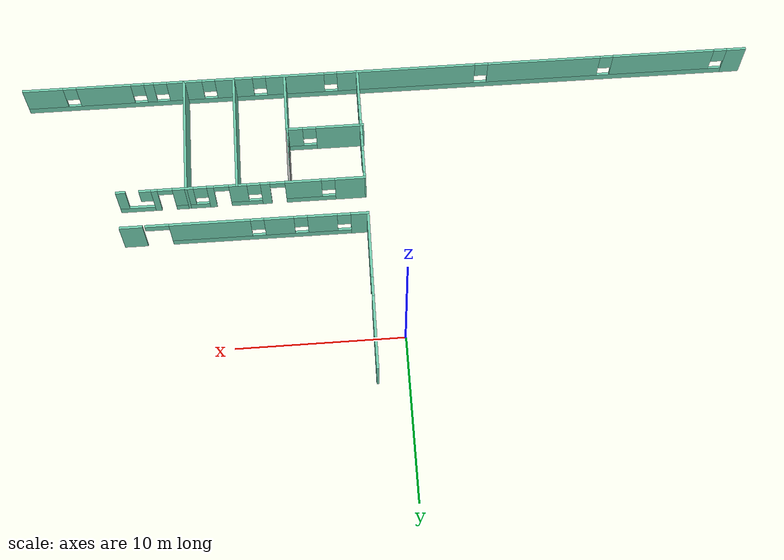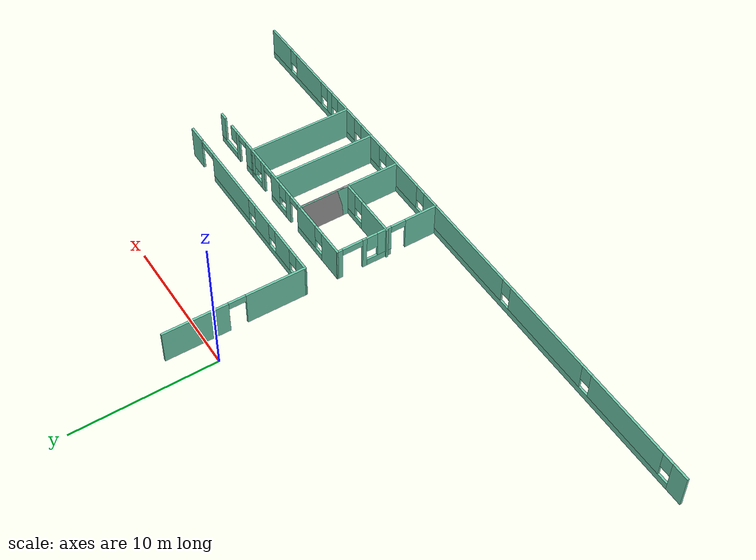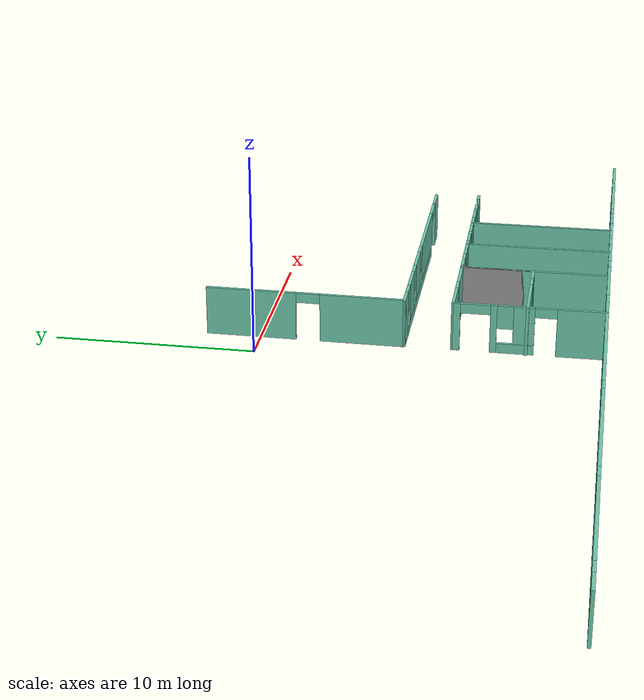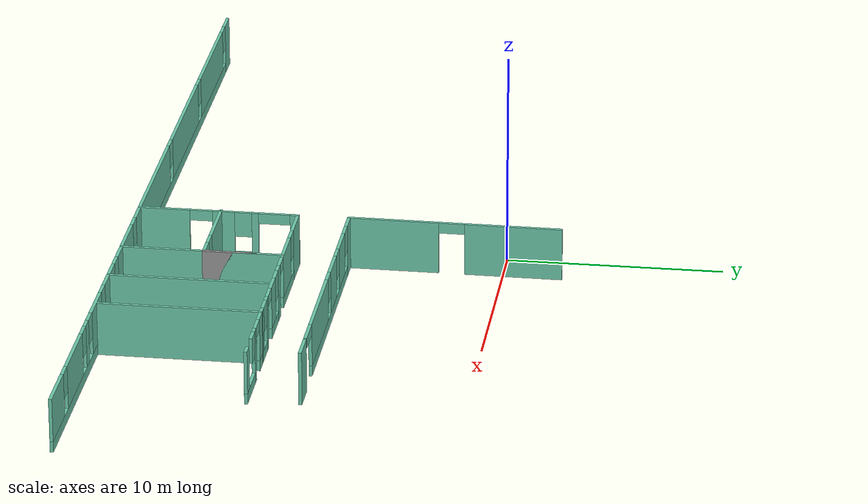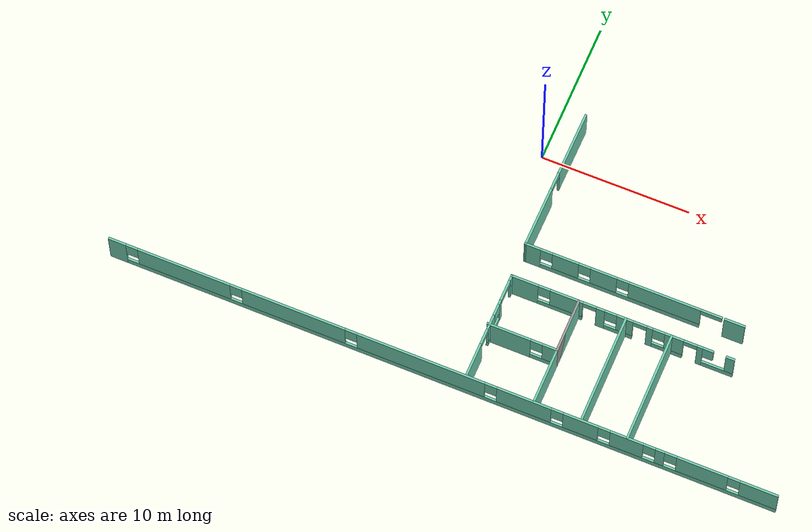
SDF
<sdf version="1.6">
 <model name="Hospital_empty">
  <pose>-0.033999 0.051012 0 0 -0 0</pose>
  <link name="Wall_1">
   <pose>0.002999 -16.937 0 0 -0 0</pose>
   <visual name="Wall_1_Visual_0">
    <pose>-21.7746 0 1.25 0 -0 0</pose>
    <geometry><box><size>1.20077 0.15 2.5</size></box></geometry>
    <material>
     <script><uri>file://media/materials/scripts/gazebo.material</uri><name>Gazebo/Grey</name></script>
     <ambient>0.435294 0.796078 0.67451 1</ambient>
    </material>
   </visual>
   <collision name="Wall_1_Collision_0">
    <geometry><box><size>1.20077 0.15 2.5</size></box></geometry>
    <pose>-21.7746 0 1.25 0 -0 0</pose>
   </collision>
   <visual name="Wall_1_Visual_1">
    <pose>0.600387 0 0.25 0 -0 0</pose>
    <geometry><box><size>43.5492 0.15 0.5</size></box></geometry>
    <material>
     <script><uri>file://media/materials/scripts/gazebo.material</uri><name>Gazebo/Grey</name></script>
     <ambient>0.435294 0.796078 0.67451 1</ambient>
    </material>
   </visual>
   <collision name="Wall_1_Collision_1">
    <geometry><box><size>43.5492 0.15 0.5</size></box></geometry>
    <pose>0.600387 0 0.25 0 -0 0</pose>
   </collision>
   <visual name="Wall_1_Visual_2">
    <pose>-17.2192 0 1.5 0 -0 0</pose>
    <geometry><box><size>6.31 0.15 2</size></box></geometry>
    <material>
     <script><uri>file://media/materials/scripts/gazebo.material</uri><name>Gazebo/Grey</name></script>
     <ambient>0.435294 0.796078 0.67451 1</ambient>
    </material>
   </visual>
   <collision name="Wall_1_Collision_2">
    <geometry><box><size>6.31 0.15 2</size></box></geometry>
    <pose>-17.2192 0 1.5 0 -0 0</pose>
   </collision>
   <visual name="Wall_1_Visual_3">
    <pose>-9.77173 0 1.5 0 -0 0</pose>
    <geometry><box><size>6.985 0.15 2</size></box></geometry>
    <material>
     <script><uri>file://media/materials/scripts/gazebo.material</uri><name>Gazebo/Grey</name></script>
     <ambient>0.435294 0.796078 0.67451 1</ambient>
    </material>
   </visual>
   <collision name="Wall_1_Collision_3">
    <geometry><box><size>6.985 0.15 2</size></box></geometry>
    <pose>-9.77173 0 1.5 0 -0 0</pose>
   </collision>
   <visual name="Wall_1_Visual_4">
    <pose>-1.19923 0 1.5 0 -0 0</pose>
    <geometry><box><size>8.56 0.15 2</size></box></geometry>
    <material>
     <script><uri>file://media/materials/scripts/gazebo.material</uri><name>Gazebo/Grey</name></script>
     <ambient>0.435294 0.796078 0.67451 1</ambient>
    </material>
   </visual>
   <collision name="Wall_1_Collision_4">
    <geometry><box><size>8.56 0.15 2</size></box></geometry>
    <pose>-1.19923 0 1.5 0 -0 0</pose>
   </collision>
   <visual name="Wall_1_Visual_5">
    <pose>5.68577 0 1.5 0 -0 0</pose>
    <geometry><box><size>3.61 0.15 2</size></box></geometry>
    <material>
     <script><uri>file://media/materials/scripts/gazebo.material</uri><name>Gazebo/Grey</name></script>
     <ambient>0.435294 0.796078 0.67451 1</ambient>
    </material>
   </visual>
   <collision name="Wall_1_Collision_5">
    <geometry><box><size>3.61 0.15 2</size></box></geometry>
    <pose>5.68577 0 1.5 0 -0 0</pose>
   </collision>
   <visual name="Wall_1_Visual_6">
    <pose>9.44327 0 1.5 0 -0 0</pose>
    <geometry><box><size>2.305 0.15 2</size></box></geometry>
    <material>
     <script><uri>file://media/materials/scripts/gazebo.material</uri><name>Gazebo/Grey</name></script>
     <ambient>0.435294 0.796078 0.67451 1</ambient>
    </material>
   </visual>
   <collision name="Wall_1_Collision_6">
    <geometry><box><size>2.305 0.15 2</size></box></geometry>
    <pose>9.44327 0 1.5 0 -0 0</pose>
   </collision>
   <visual name="Wall_1_Visual_7">
    <pose>12.4808 0 1.5 0 -0 0</pose>
    <geometry><box><size>2.17 0.15 2</size></box></geometry>
    <material>
     <script><uri>file://media/materials/scripts/gazebo.material</uri><name>Gazebo/Grey</name></script>
     <ambient>0.435294 0.796078 0.67451 1</ambient>
    </material>
   </visual>
   <collision name="Wall_1_Collision_7">
    <geometry><box><size>2.17 0.15 2</size></box></geometry>
    <pose>12.4808 0 1.5 0 -0 0</pose>
   </collision>
   <visual name="Wall_1_Visual_8">
    <pose>14.6633 0 1.5 0 -0 0</pose>
    <geometry><box><size>0.595 0.15 2</size></box></geometry>
    <material>
     <script><uri>file://media/materials/scripts/gazebo.material</uri><name>Gazebo/Grey</name></script>
     <ambient>0.435294 0.796078 0.67451 1</ambient>
    </material>
   </visual>
   <collision name="Wall_1_Collision_8">
    <geometry><box><size>0.595 0.15 2</size></box></geometry>
    <pose>14.6633 0 1.5 0 -0 0</pose>
   </collision>
   <visual name="Wall_1_Visual_9">
    <pose>17.4308 0 1.5 0 -0 0</pose>
    <geometry><box><size>3.34 0.15 2</size></box></geometry>
    <material>
     <script><uri>file://media/materials/scripts/gazebo.material</uri><name>Gazebo/Grey</name></script>
     <ambient>0.435294 0.796078 0.67451 1</ambient>
    </material>
   </visual>
   <collision name="Wall_1_Collision_9">
    <geometry><box><size>3.34 0.15 2</size></box></geometry>
    <pose>17.4308 0 1.5 0 -0 0</pose>
   </collision>
   <visual name="Wall_1_Visual_10">
    <pose>21.1379 0 1.5 0 -0 0</pose>
    <geometry><box><size>2.47423 0.15 2</size></box></geometry>
    <material>
     <script><uri>file://media/materials/scripts/gazebo.material</uri><name>Gazebo/Grey</name></script>
     <ambient>0.435294 0.796078 0.67451 1</ambient>
    </material>
   </visual>
   <collision name="Wall_1_Collision_10">
    <geometry><box><size>2.47423 0.15 2</size></box></geometry>
    <pose>21.1379 0 1.5 0 -0 0</pose>
   </collision>
   <visual name="Wall_1_Visual_11">
    <pose>-20.7742 0 1.9 0 -0 0</pose>
    <geometry><box><size>0.8 0.15 1.2</size></box></geometry>
    <material>
     <script><uri>file://media/materials/scripts/gazebo.material</uri><name>Gazebo/Grey</name></script>
     <ambient>0.435294 0.796078 0.67451 1</ambient>
    </material>
   </visual>
   <collision name="Wall_1_Collision_11">
    <geometry><box><size>0.8 0.15 1.2</size></box></geometry>
    <pose>-20.7742 0 1.9 0 -0 0</pose>
   </collision>
   <visual name="Wall_1_Visual_12">
    <pose>-13.6642 0 1.9 0 -0 0</pose>
    <geometry><box><size>0.8 0.15 1.2</size></box></geometry>
    <material>
     <script><uri>file://media/materials/scripts/gazebo.material</uri><name>Gazebo/Grey</name></script>
     <ambient>0.435294 0.796078 0.67451 1</ambient>
    </material>
   </visual>
   <collision name="Wall_1_Collision_12">
    <geometry><box><size>0.8 0.15 1.2</size></box></geometry>
    <pose>-13.6642 0 1.9 0 -0 0</pose>
   </collision>
   <visual name="Wall_1_Visual_13">
    <pose>-5.87923 0 1.9 0 -0 0</pose>
    <geometry><box><size>0.8 0.15 1.2</size></box></geometry>
    <material>
     <script><uri>file://media/materials/scripts/gazebo.material</uri><name>Gazebo/Grey</name></script>
     <ambient>0.435294 0.796078 0.67451 1</ambient>
    </material>
   </visual>
   <collision name="Wall_1_Collision_13">
    <geometry><box><size>0.8 0.15 1.2</size></box></geometry>
    <pose>-5.87923 0 1.9 0 -0 0</pose>
   </collision>
   <visual name="Wall_1_Visual_14">
    <pose>3.48077 0 1.9 0 -0 0</pose>
    <geometry><box><size>0.8 0.15 1.2</size></box></geometry>
    <material>
     <script><uri>file://media/materials/scripts/gazebo.material</uri><name>Gazebo/Grey</name></script>
     <ambient>0.435294 0.796078 0.67451 1</ambient>
    </material>
   </visual>
   <collision name="Wall_1_Collision_14">
    <geometry><box><size>0.8 0.15 1.2</size></box></geometry>
    <pose>3.48077 0 1.9 0 -0 0</pose>
   </collision>
   <visual name="Wall_1_Visual_15">
    <pose>7.89077 0 1.9 0 -0 0</pose>
    <geometry><box><size>0.8 0.15 1.2</size></box></geometry>
    <material>
     <script><uri>file://media/materials/scripts/gazebo.material</uri><name>Gazebo/Grey</name></script>
     <ambient>0.435294 0.796078 0.67451 1</ambient>
    </material>
   </visual>
   <collision name="Wall_1_Collision_15">
    <geometry><box><size>0.8 0.15 1.2</size></box></geometry>
    <pose>7.89077 0 1.9 0 -0 0</pose>
   </collision>
   <visual name="Wall_1_Visual_16">
    <pose>10.9958 0 1.9 0 -0 0</pose>
    <geometry><box><size>0.8 0.15 1.2</size></box></geometry>
    <material>
     <script><uri>file://media/materials/scripts/gazebo.material</uri><name>Gazebo/Grey</name></script>
     <ambient>0.435294 0.796078 0.67451 1</ambient>
    </material>
   </visual>
   <collision name="Wall_1_Collision_16">
    <geometry><box><size>0.8 0.15 1.2</size></box></geometry>
    <pose>10.9958 0 1.9 0 -0 0</pose>
   </collision>
   <visual name="Wall_1_Visual_17">
    <pose>13.9658 0 1.9 0 -0 0</pose>
    <geometry><box><size>0.8 0.15 1.2</size></box></geometry>
    <material>
     <script><uri>file://media/materials/scripts/gazebo.material</uri><name>Gazebo/Grey</name></script>
     <ambient>0.435294 0.796078 0.67451 1</ambient>
    </material>
   </visual>
   <collision name="Wall_1_Collision_17">
    <geometry><box><size>0.8 0.15 1.2</size></box></geometry>
    <pose>13.9658 0 1.9 0 -0 0</pose>
   </collision>
   <visual name="Wall_1_Visual_18">
    <pose>15.3608 0 1.9 0 -0 0</pose>
    <geometry><box><size>0.8 0.15 1.2</size></box></geometry>
    <material>
     <script><uri>file://media/materials/scripts/gazebo.material</uri><name>Gazebo/Grey</name></script>
     <ambient>0.435294 0.796078 0.67451 1</ambient>
    </material>
   </visual>
   <collision name="Wall_1_Collision_18">
    <geometry><box><size>0.8 0.15 1.2</size></box></geometry>
    <pose>15.3608 0 1.9 0 -0 0</pose>
   </collision>
   <visual name="Wall_1_Visual_19">
    <pose>19.5008 0 1.9 0 -0 0</pose>
    <geometry><box><size>0.8 0.15 1.2</size></box></geometry>
    <material>
     <script><uri>file://media/materials/scripts/gazebo.material</uri><name>Gazebo/Grey</name></script>
     <ambient>0.435294 0.796078 0.67451 1</ambient>
    </material>
   </visual>
   <collision name="Wall_1_Collision_19">
    <geometry><box><size>0.8 0.15 1.2</size></box></geometry>
    <pose>19.5008 0 1.9 0 -0 0</pose>
   </collision>
  </link>
  <link name="Wall_120">
   <pose>1.827 -13.228 0 0 0 -1.5708</pose>
   <visual name="Wall_120_Visual_0">
    <pose>-3.53507 0 1.25 0 -0 0</pose>
    <geometry><box><size>0.429854 0.15 2.5</size></box></geometry>
    <material>
     <script><uri>file://media/materials/scripts/gazebo.material</uri><name>Gazebo/Grey</name></script>
     <ambient>0.435294 0.796078 0.67451 1</ambient>
    </material>
   </visual>
   <collision name="Wall_120_Collision_0">
    <geometry><box><size>0.429854 0.15 2.5</size></box></geometry>
    <pose>-3.53507 0 1.25 0 -0 0</pose>
   </collision>
   <visual name="Wall_120_Visual_1">
    <pose>-1.69703 0 1.25 0 -0 0</pose>
    <geometry><box><size>0.315461 0.15 2.5</size></box></geometry>
    <material>
     <script><uri>file://media/materials/scripts/gazebo.material</uri><name>Gazebo/Grey</name></script>
     <ambient>0.435294 0.796078 0.67451 1</ambient>
    </material>
   </visual>
   <collision name="Wall_120_Collision_1">
    <geometry><box><size>0.315461 0.15 2.5</size></box></geometry>
    <pose>-1.69703 0 1.25 0 -0 0</pose>
   </collision>
   <visual name="Wall_120_Visual_2">
    <pose>2.55431 0 1.25 0 -0 0</pose>
    <geometry><box><size>2.39139 0.15 2.5</size></box></geometry>
    <material>
     <script><uri>file://media/materials/scripts/gazebo.material</uri><name>Gazebo/Grey</name></script>
     <ambient>0.435294 0.796078 0.67451 1</ambient>
    </material>
   </visual>
   <collision name="Wall_120_Collision_2">
    <geometry><box><size>2.39139 0.15 2.5</size></box></geometry>
    <pose>2.55431 0 1.25 0 -0 0</pose>
   </collision>
   <visual name="Wall_120_Visual_3">
    <pose>-0.625311 0 0.25 0 -0 0</pose>
    <geometry><box><size>1.82798 0.15 0.5</size></box></geometry>
    <material>
     <script><uri>file://media/materials/scripts/gazebo.material</uri><name>Gazebo/Grey</name></script>
     <ambient>0.435294 0.796078 0.67451 1</ambient>
    </material>
   </visual>
   <collision name="Wall_120_Collision_3">
    <geometry><box><size>1.82798 0.15 0.5</size></box></geometry>
    <pose>-0.625311 0 0.25 0 -0 0</pose>
   </collision>
   <visual name="Wall_120_Visual_4">
    <pose>-0.225311 0 1.5 0 -0 0</pose>
    <geometry><box><size>1.02798 0.15 2</size></box></geometry>
    <material>
     <script><uri>file://media/materials/scripts/gazebo.material</uri><name>Gazebo/Grey</name></script>
     <ambient>0.435294 0.796078 0.67451 1</ambient>
    </material>
   </visual>
   <collision name="Wall_120_Collision_4">
    <geometry><box><size>1.02798 0.15 2</size></box></geometry>
    <pose>-0.225311 0 1.5 0 -0 0</pose>
   </collision>
   <visual name="Wall_120_Visual_5">
    <pose>-1.1393 0 1.9 0 -0 0</pose>
    <geometry><box><size>0.8 0.15 1.2</size></box></geometry>
    <material>
     <script><uri>file://media/materials/scripts/gazebo.material</uri><name>Gazebo/Grey</name></script>
     <ambient>0.435294 0.796078 0.67451 1</ambient>
    </material>
   </visual>
   <collision name="Wall_120_Collision_5">
    <geometry><box><size>0.8 0.15 1.2</size></box></geometry>
    <pose>-1.1393 0 1.9 0 -0 0</pose>
   </collision>
   <visual name="Wall_120_Visual_6">
    <pose>-2.58745 0 2.25 0 -0 0</pose>
    <geometry><box><size>1.46538 0.15 0.5</size></box></geometry>
    <material>
     <script><uri>file://media/materials/scripts/gazebo.material</uri><name>Gazebo/Grey</name></script>
     <ambient>0.435294 0.796078 0.67451 1</ambient>
    </material>
   </visual>
   <collision name="Wall_120_Collision_6">
    <geometry><box><size>1.46538 0.15 0.5</size></box></geometry>
    <pose>-2.58745 0 2.25 0 -0 0</pose>
   </collision>
   <visual name="Wall_120_Visual_7">
    <pose>0.823647 0 2.25 0 -0 0</pose>
    <geometry><box><size>1.06994 0.15 0.5</size></box></geometry>
    <material>
     <script><uri>file://media/materials/scripts/gazebo.material</uri><name>Gazebo/Grey</name></script>
     <ambient>0.435294 0.796078 0.67451 1</ambient>
    </material>
   </visual>
   <collision name="Wall_120_Collision_7">
    <geometry><box><size>1.06994 0.15 0.5</size></box></geometry>
    <pose>0.823647 0 2.25 0 -0 0</pose>
   </collision>
  </link>
  <link name="Wall_52">
   <pose>9.2135 -9.54001 0 0 -0 0.00176</pose>
   <visual name="Wall_52_Visual_0">
    <pose>-6.52704 0 1.25 0 -0 0</pose>
    <geometry><box><size>1.86895 0.15 2.5</size></box></geometry>
    <material>
     <script><uri>file://media/materials/scripts/gazebo.material</uri><name>Gazebo/Grey</name></script>
     <ambient>0.435294 0.796078 0.67451 1</ambient>
    </material>
   </visual>
   <collision name="Wall_52_Collision_0">
    <geometry><box><size>1.86895 0.15 2.5</size></box></geometry>
    <pose>-6.52704 0 1.25 0 -0 0</pose>
   </collision>
   <visual name="Wall_52_Visual_1">
    <pose>-1.42899 0 1.25 0 -0 0</pose>
    <geometry><box><size>0.56652 0.15 2.5</size></box></geometry>
    <material>
     <script><uri>file://media/materials/scripts/gazebo.material</uri><name>Gazebo/Grey</name></script>
     <ambient>0.435294 0.796078 0.67451 1</ambient>
    </material>
   </visual>
   <collision name="Wall_52_Collision_1">
    <geometry><box><size>0.56652 0.15 2.5</size></box></geometry>
    <pose>-1.42899 0 1.25 0 -0 0</pose>
   </collision>
   <visual name="Wall_52_Visual_2">
    <pose>1.84327 0 1.25 0 -0 0</pose>
    <geometry><box><size>0.408722 0.15 2.5</size></box></geometry>
    <material>
     <script><uri>file://media/materials/scripts/gazebo.material</uri><name>Gazebo/Grey</name></script>
     <ambient>0.435294 0.796078 0.67451 1</ambient>
    </material>
   </visual>
   <collision name="Wall_52_Collision_2">
    <geometry><box><size>0.408722 0.15 2.5</size></box></geometry>
    <pose>1.84327 0 1.25 0 -0 0</pose>
   </collision>
   <visual name="Wall_52_Visual_3">
    <pose>5.17521 0 1.25 0 -0 0</pose>
    <geometry><box><size>0.370303 0.15 2.5</size></box></geometry>
    <material>
     <script><uri>file://media/materials/scripts/gazebo.material</uri><name>Gazebo/Grey</name></script>
     <ambient>0.435294 0.796078 0.67451 1</ambient>
    </material>
   </visual>
   <collision name="Wall_52_Collision_3">
    <geometry><box><size>0.370303 0.15 2.5</size></box></geometry>
    <pose>5.17521 0 1.25 0 -0 0</pose>
   </collision>
   <visual name="Wall_52_Visual_4">
    <pose>-4.10241 0 0.25 0 -0 0</pose>
    <geometry><box><size>2.98031 0.15 0.5</size></box></geometry>
    <material>
     <script><uri>file://media/materials/scripts/gazebo.material</uri><name>Gazebo/Grey</name></script>
     <ambient>0.435294 0.796078 0.67451 1</ambient>
    </material>
   </visual>
   <collision name="Wall_52_Collision_4">
    <geometry><box><size>2.98031 0.15 0.5</size></box></geometry>
    <pose>-4.10241 0 0.25 0 -0 0</pose>
   </collision>
   <visual name="Wall_52_Visual_5">
    <pose>-0.203413 0 0.25 0 -0 0</pose>
    <geometry><box><size>1.88464 0.15 0.5</size></box></geometry>
    <material>
     <script><uri>file://media/materials/scripts/gazebo.material</uri><name>Gazebo/Grey</name></script>
     <ambient>0.435294 0.796078 0.67451 1</ambient>
    </material>
   </visual>
   <collision name="Wall_52_Collision_5">
    <geometry><box><size>1.88464 0.15 0.5</size></box></geometry>
    <pose>-0.203413 0 0.25 0 -0 0</pose>
   </collision>
   <visual name="Wall_52_Visual_6">
    <pose>3.06885 0 0.25 0 -0 0</pose>
    <geometry><box><size>2.04244 0.15 0.5</size></box></geometry>
    <material>
     <script><uri>file://media/materials/scripts/gazebo.material</uri><name>Gazebo/Grey</name></script>
     <ambient>0.435294 0.796078 0.67451 1</ambient>
    </material>
   </visual>
   <collision name="Wall_52_Collision_6">
    <geometry><box><size>2.04244 0.15 0.5</size></box></geometry>
    <pose>3.06885 0 0.25 0 -0 0</pose>
   </collision>
   <visual name="Wall_52_Visual_7">
    <pose>6.41094 0 0.25 0 -0 0</pose>
    <geometry><box><size>2.10114 0.15 0.5</size></box></geometry>
    <material>
     <script><uri>file://media/materials/scripts/gazebo.material</uri><name>Gazebo/Grey</name></script>
     <ambient>0.435294 0.796078 0.67451 1</ambient>
    </material>
   </visual>
   <collision name="Wall_52_Collision_7">
    <geometry><box><size>2.10114 0.15 0.5</size></box></geometry>
    <pose>6.41094 0 0.25 0 -0 0</pose>
   </collision>
   <visual name="Wall_52_Visual_8">
    <pose>-3.70241 0 1.5 0 -0 0</pose>
    <geometry><box><size>2.18031 0.15 2</size></box></geometry>
    <material>
     <script><uri>file://media/materials/scripts/gazebo.material</uri><name>Gazebo/Grey</name></script>
     <ambient>0.435294 0.796078 0.67451 1</ambient>
    </material>
   </visual>
   <collision name="Wall_52_Collision_8">
    <geometry><box><size>2.18031 0.15 2</size></box></geometry>
    <pose>-3.70241 0 1.5 0 -0 0</pose>
   </collision>
   <visual name="Wall_52_Visual_9">
    <pose>-3.70241 0 1.5 0 -0 0</pose>
    <geometry><box><size>2.18031 0.15 2</size></box></geometry>
    <material>
     <script><uri>file://media/materials/scripts/gazebo.material</uri><name>Gazebo/Grey</name></script>
     <ambient>0.435294 0.796078 0.67451 1</ambient>
    </material>
   </visual>
   <collision name="Wall_52_Collision_9">
    <geometry><box><size>2.18031 0.15 2</size></box></geometry>
    <pose>-3.70241 0 1.5 0 -0 0</pose>
   </collision>
   <visual name="Wall_52_Visual_10">
    <pose>0.196587 0 1.5 0 -0 0</pose>
    <geometry><box><size>1.08464 0.15 2</size></box></geometry>
    <material>
     <script><uri>file://media/materials/scripts/gazebo.material</uri><name>Gazebo/Grey</name></script>
     <ambient>0.435294 0.796078 0.67451 1</ambient>
    </material>
   </visual>
   <collision name="Wall_52_Collision_10">
    <geometry><box><size>1.08464 0.15 2</size></box></geometry>
    <pose>0.196587 0 1.5 0 -0 0</pose>
   </collision>
   <visual name="Wall_52_Visual_11">
    <pose>0.196587 0 1.5 0 -0 0</pose>
    <geometry><box><size>1.08464 0.15 2</size></box></geometry>
    <material>
     <script><uri>file://media/materials/scripts/gazebo.material</uri><name>Gazebo/Grey</name></script>
     <ambient>0.435294 0.796078 0.67451 1</ambient>
    </material>
   </visual>
   <collision name="Wall_52_Collision_11">
    <geometry><box><size>1.08464 0.15 2</size></box></geometry>
    <pose>0.196587 0 1.5 0 -0 0</pose>
   </collision>
   <visual name="Wall_52_Visual_12">
    <pose>3.46885 0 1.5 0 -0 0</pose>
    <geometry><box><size>1.24244 0.15 2</size></box></geometry>
    <material>
     <script><uri>file://media/materials/scripts/gazebo.material</uri><name>Gazebo/Grey</name></script>
     <ambient>0.435294 0.796078 0.67451 1</ambient>
    </material>
   </visual>
   <collision name="Wall_52_Collision_12">
    <geometry><box><size>1.24244 0.15 2</size></box></geometry>
    <pose>3.46885 0 1.5 0 -0 0</pose>
   </collision>
   <visual name="Wall_52_Visual_13">
    <pose>3.46885 0 1.5 0 -0 0</pose>
    <geometry><box><size>1.24244 0.15 2</size></box></geometry>
    <material>
     <script><uri>file://media/materials/scripts/gazebo.material</uri><name>Gazebo/Grey</name></script>
     <ambient>0.435294 0.796078 0.67451 1</ambient>
    </material>
   </visual>
   <collision name="Wall_52_Collision_13">
    <geometry><box><size>1.24244 0.15 2</size></box></geometry>
    <pose>3.46885 0 1.5 0 -0 0</pose>
   </collision>
   <visual name="Wall_52_Visual_14">
    <pose>7.16907 0 1.5 0 -0 0</pose>
    <geometry><box><size>0.584877 0.15 2</size></box></geometry>
    <material>
     <script><uri>file://media/materials/scripts/gazebo.material</uri><name>Gazebo/Grey</name></script>
     <ambient>0.435294 0.796078 0.67451 1</ambient>
    </material>
   </visual>
   <collision name="Wall_52_Collision_14">
    <geometry><box><size>0.584877 0.15 2</size></box></geometry>
    <pose>7.16907 0 1.5 0 -0 0</pose>
   </collision>
   <visual name="Wall_52_Visual_15">
    <pose>-5.19256 0 1.9 0 -0 0</pose>
    <geometry><box><size>0.8 0.15 1.2</size></box></geometry>
    <material>
     <script><uri>file://media/materials/scripts/gazebo.material</uri><name>Gazebo/Grey</name></script>
     <ambient>0.435294 0.796078 0.67451 1</ambient>
    </material>
   </visual>
   <collision name="Wall_52_Collision_15">
    <geometry><box><size>0.8 0.15 1.2</size></box></geometry>
    <pose>-5.19256 0 1.9 0 -0 0</pose>
   </collision>
   <visual name="Wall_52_Visual_16">
    <pose>-0.745733 0 1.9 0 -0 0</pose>
    <geometry><box><size>0.8 0.15 1.2</size></box></geometry>
    <material>
     <script><uri>file://media/materials/scripts/gazebo.material</uri><name>Gazebo/Grey</name></script>
     <ambient>0.435294 0.796078 0.67451 1</ambient>
    </material>
   </visual>
   <collision name="Wall_52_Collision_16">
    <geometry><box><size>0.8 0.15 1.2</size></box></geometry>
    <pose>-0.745733 0 1.9 0 -0 0</pose>
   </collision>
   <visual name="Wall_52_Visual_17">
    <pose>2.44763 0 1.9 0 -0 0</pose>
    <geometry><box><size>0.8 0.15 1.2</size></box></geometry>
    <material>
     <script><uri>file://media/materials/scripts/gazebo.material</uri><name>Gazebo/Grey</name></script>
     <ambient>0.435294 0.796078 0.67451 1</ambient>
    </material>
   </visual>
   <collision name="Wall_52_Collision_17">
    <geometry><box><size>0.8 0.15 1.2</size></box></geometry>
    <pose>2.44763 0 1.9 0 -0 0</pose>
   </collision>
   <visual name="Wall_52_Visual_18">
    <pose>5.7185 0 1.9 0 -0 0</pose>
    <geometry><box><size>0.716268 0.15 1.2</size></box></geometry>
    <material>
     <script><uri>file://media/materials/scripts/gazebo.material</uri><name>Gazebo/Grey</name></script>
     <ambient>0.435294 0.796078 0.67451 1</ambient>
    </material>
   </visual>
   <collision name="Wall_52_Collision_18">
    <geometry><box><size>0.716268 0.15 1.2</size></box></geometry>
    <pose>5.7185 0 1.9 0 -0 0</pose>
   </collision>
   <visual name="Wall_52_Visual_19">
    <pose>-2.16225 0 2.25 0 -0 0</pose>
    <geometry><box><size>0.9 0.15 0.5</size></box></geometry>
    <material>
     <script><uri>file://media/materials/scripts/gazebo.material</uri><name>Gazebo/Grey</name></script>
     <ambient>0.435294 0.796078 0.67451 1</ambient>
    </material>
   </visual>
   <collision name="Wall_52_Collision_19">
    <geometry><box><size>0.9 0.15 0.5</size></box></geometry>
    <pose>-2.16225 0 2.25 0 -0 0</pose>
   </collision>
   <visual name="Wall_52_Visual_20">
    <pose>-2.16225 0 2.25 0 -0 0</pose>
    <geometry><box><size>0.9 0.15 0.5</size></box></geometry>
    <material>
     <script><uri>file://media/materials/scripts/gazebo.material</uri><name>Gazebo/Grey</name></script>
     <ambient>0.435294 0.796078 0.67451 1</ambient>
    </material>
   </visual>
   <collision name="Wall_52_Collision_20">
    <geometry><box><size>0.9 0.15 0.5</size></box></geometry>
    <pose>-2.16225 0 2.25 0 -0 0</pose>
   </collision>
   <visual name="Wall_52_Visual_21">
    <pose>1.18891 0 2.25 0 -0 0</pose>
    <geometry><box><size>0.9 0.15 0.5</size></box></geometry>
    <material>
     <script><uri>file://media/materials/scripts/gazebo.material</uri><name>Gazebo/Grey</name></script>
     <ambient>0.435294 0.796078 0.67451 1</ambient>
    </material>
   </visual>
   <collision name="Wall_52_Collision_21">
    <geometry><box><size>0.9 0.15 0.5</size></box></geometry>
    <pose>1.18891 0 2.25 0 -0 0</pose>
   </collision>
   <visual name="Wall_52_Visual_22">
    <pose>1.18891 0 2.25 0 -0 0</pose>
    <geometry><box><size>0.9 0.15 0.5</size></box></geometry>
    <material>
     <script><uri>file://media/materials/scripts/gazebo.material</uri><name>Gazebo/Grey</name></script>
     <ambient>0.435294 0.796078 0.67451 1</ambient>
    </material>
   </visual>
   <collision name="Wall_52_Collision_22">
    <geometry><box><size>0.9 0.15 0.5</size></box></geometry>
    <pose>1.18891 0 2.25 0 -0 0</pose>
   </collision>
   <visual name="Wall_52_Visual_23">
    <pose>4.54006 0 2.25 0 -0 0</pose>
    <geometry><box><size>0.9 0.15 0.5</size></box></geometry>
    <material>
     <script><uri>file://media/materials/scripts/gazebo.material</uri><name>Gazebo/Grey</name></script>
     <ambient>0.435294 0.796078 0.67451 1</ambient>
    </material>
   </visual>
   <collision name="Wall_52_Collision_23">
    <geometry><box><size>0.9 0.15 0.5</size></box></geometry>
    <pose>4.54006 0 2.25 0 -0 0</pose>
   </collision>
   <visual name="Wall_52_Visual_24">
    <pose>4.54006 0 2.25 0 -0 0</pose>
    <geometry><box><size>0.9 0.15 0.5</size></box></geometry>
    <material>
     <script><uri>file://media/materials/scripts/gazebo.material</uri><name>Gazebo/Grey</name></script>
     <ambient>0.435294 0.796078 0.67451 1</ambient>
    </material>
   </visual>
   <collision name="Wall_52_Collision_24">
    <geometry><box><size>0.9 0.15 0.5</size></box></geometry>
    <pose>4.54006 0 2.25 0 -0 0</pose>
   </collision>
  </link>
  <link name="Wall_70">
   <pose>1.82005 -2.28205 0 0 0 -1.57938</pose>
   <visual name="Wall_70_Visual_0">
    <pose>-2.71953 0 1.25 0 -0 0</pose>
    <geometry><box><size>4.50523 0.15 2.5</size></box></geometry>
    <material>
     <script><uri>file://media/materials/scripts/gazebo.material</uri><name>Gazebo/Grey</name></script>
     <ambient>0.435294 0.796078 0.67451 1</ambient>
    </material>
   </visual>
   <collision name="Wall_70_Collision_0">
    <geometry><box><size>4.50523 0.15 2.5</size></box></geometry>
    <pose>-2.71953 0 1.25 0 -0 0</pose>
   </collision>
   <visual name="Wall_70_Visual_1">
    <pose>2.84817 0 1.25 0 -0 0</pose>
    <geometry><box><size>4.24795 0.15 2.5</size></box></geometry>
    <material>
     <script><uri>file://media/materials/scripts/gazebo.material</uri><name>Gazebo/Grey</name></script>
     <ambient>0.435294 0.796078 0.67451 1</ambient>
    </material>
   </visual>
   <collision name="Wall_70_Collision_1">
    <geometry><box><size>4.24795 0.15 2.5</size></box></geometry>
    <pose>2.84817 0 1.25 0 -0 0</pose>
   </collision>
   <visual name="Wall_70_Visual_2">
    <pose>0.128641 0 2.25 0 -0 0</pose>
    <geometry><box><size>1.19111 0.15 0.5</size></box></geometry>
    <material>
     <script><uri>file://media/materials/scripts/gazebo.material</uri><name>Gazebo/Grey</name></script>
     <ambient>0.435294 0.796078 0.67451 1</ambient>
    </material>
   </visual>
   <collision name="Wall_70_Collision_2">
    <geometry><box><size>1.19111 0.15 0.5</size></box></geometry>
    <pose>0.128641 0 2.25 0 -0 0</pose>
   </collision>
  </link>
  <link name="Wall_71">
   <pose>9.078 -7.17901 0 0 -0 0</pose>
   <visual name="Wall_71_Visual_0">
    <pose>-6.82343 0 1.25 0 -0 0</pose>
    <geometry><box><size>1.10315 0.15 2.5</size></box></geometry>
    <material>
     <script><uri>file://media/materials/scripts/gazebo.material</uri><name>Gazebo/Grey</name></script>
     <ambient>0.435294 0.796078 0.67451 1</ambient>
    </material>
   </visual>
   <collision name="Wall_71_Collision_0">
    <geometry><box><size>1.10315 0.15 2.5</size></box></geometry>
    <pose>-6.82343 0 1.25 0 -0 0</pose>
   </collision>
   <visual name="Wall_71_Visual_1">
    <pose>6.68282 0 1.25 0 -0 0</pose>
    <geometry><box><size>1.38436 0.15 2.5</size></box></geometry>
    <material>
     <script><uri>file://media/materials/scripts/gazebo.material</uri><name>Gazebo/Grey</name></script>
     <ambient>0.435294 0.796078 0.67451 1</ambient>
    </material>
   </visual>
   <collision name="Wall_71_Collision_1">
    <geometry><box><size>1.38436 0.15 2.5</size></box></geometry>
    <pose>6.68282 0 1.25 0 -0 0</pose>
   </collision>
   <visual name="Wall_71_Visual_2">
    <pose>-0.909227 0 0.25 0 -0 0</pose>
    <geometry><box><size>10.7253 0.15 0.5</size></box></geometry>
    <material>
     <script><uri>file://media/materials/scripts/gazebo.material</uri><name>Gazebo/Grey</name></script>
     <ambient>0.435294 0.796078 0.67451 1</ambient>
    </material>
   </visual>
   <collision name="Wall_71_Collision_2">
    <geometry><box><size>10.7253 0.15 0.5</size></box></geometry>
    <pose>-0.909227 0 0.25 0 -0 0</pose>
   </collision>
   <visual name="Wall_71_Visual_3">
    <pose>-4.5897 0 1.5 0 -0 0</pose>
    <geometry><box><size>1.76431 0.15 2</size></box></geometry>
    <material>
     <script><uri>file://media/materials/scripts/gazebo.material</uri><name>Gazebo/Grey</name></script>
     <ambient>0.435294 0.796078 0.67451 1</ambient>
    </material>
   </visual>
   <collision name="Wall_71_Collision_3">
    <geometry><box><size>1.76431 0.15 2</size></box></geometry>
    <pose>-4.5897 0 1.5 0 -0 0</pose>
   </collision>
   <visual name="Wall_71_Visual_4">
    <pose>-2.02538 0 1.5 0 -0 0</pose>
    <geometry><box><size>1.76431 0.15 2</size></box></geometry>
    <material>
     <script><uri>file://media/materials/scripts/gazebo.material</uri><name>Gazebo/Grey</name></script>
     <ambient>0.435294 0.796078 0.67451 1</ambient>
    </material>
   </visual>
   <collision name="Wall_71_Collision_4">
    <geometry><box><size>1.76431 0.15 2</size></box></geometry>
    <pose>-2.02538 0 1.5 0 -0 0</pose>
   </collision>
   <visual name="Wall_71_Visual_5">
    <pose>2.05509 0 1.5 0 -0 0</pose>
    <geometry><box><size>4.79663 0.15 2</size></box></geometry>
    <material>
     <script><uri>file://media/materials/scripts/gazebo.material</uri><name>Gazebo/Grey</name></script>
     <ambient>0.435294 0.796078 0.67451 1</ambient>
    </material>
   </visual>
   <collision name="Wall_71_Collision_5">
    <geometry><box><size>4.79663 0.15 2</size></box></geometry>
    <pose>2.05509 0 1.5 0 -0 0</pose>
   </collision>
   <visual name="Wall_71_Visual_6">
    <pose>-5.87186 0 1.9 0 -0 0</pose>
    <geometry><box><size>0.8 0.15 1.2</size></box></geometry>
    <material>
     <script><uri>file://media/materials/scripts/gazebo.material</uri><name>Gazebo/Grey</name></script>
     <ambient>0.435294 0.796078 0.67451 1</ambient>
    </material>
   </visual>
   <collision name="Wall_71_Collision_6">
    <geometry><box><size>0.8 0.15 1.2</size></box></geometry>
    <pose>-5.87186 0 1.9 0 -0 0</pose>
   </collision>
   <visual name="Wall_71_Visual_7">
    <pose>-3.30754 0 1.9 0 -0 0</pose>
    <geometry><box><size>0.8 0.15 1.2</size></box></geometry>
    <material>
     <script><uri>file://media/materials/scripts/gazebo.material</uri><name>Gazebo/Grey</name></script>
     <ambient>0.435294 0.796078 0.67451 1</ambient>
    </material>
   </visual>
   <collision name="Wall_71_Collision_7">
    <geometry><box><size>0.8 0.15 1.2</size></box></geometry>
    <pose>-3.30754 0 1.9 0 -0 0</pose>
   </collision>
   <visual name="Wall_71_Visual_8">
    <pose>-0.743228 0 1.9 0 -0 0</pose>
    <geometry><box><size>0.8 0.15 1.2</size></box></geometry>
    <material>
     <script><uri>file://media/materials/scripts/gazebo.material</uri><name>Gazebo/Grey</name></script>
     <ambient>0.435294 0.796078 0.67451 1</ambient>
    </material>
   </visual>
   <collision name="Wall_71_Collision_8">
    <geometry><box><size>0.8 0.15 1.2</size></box></geometry>
    <pose>-0.743228 0 1.9 0 -0 0</pose>
   </collision>
   <visual name="Wall_71_Visual_9">
    <pose>5.1598 0 2.25 0 -0 0</pose>
    <geometry><box><size>1.41281 0.15 0.5</size></box></geometry>
    <material>
     <script><uri>file://media/materials/scripts/gazebo.material</uri><name>Gazebo/Grey</name></script>
     <ambient>0.435294 0.796078 0.67451 1</ambient>
    </material>
   </visual>
   <collision name="Wall_71_Collision_9">
    <geometry><box><size>1.41281 0.15 0.5</size></box></geometry>
    <pose>5.1598 0 2.25 0 -0 0</pose>
   </collision>
  </link>
  <link name="Wall_74">
   <pose>4.025 -13.151 0 0 -0 0</pose>
   <visual name="Wall_74_Visual_0">
    <pose>-0.912207 0 1.25 0 -0 0</pose>
    <geometry><box><size>2.92559 0.15 2.5</size></box></geometry>
    <material>
     <script><uri>file://media/materials/scripts/gazebo.material</uri><name>Gazebo/Grey</name></script>
     <ambient>0.435294 0.796078 0.67451 1</ambient>
    </material>
   </visual>
   <collision name="Wall_74_Collision_0">
    <geometry><box><size>2.92559 0.15 2.5</size></box></geometry>
    <pose>-0.912207 0 1.25 0 -0 0</pose>
   </collision>
   <visual name="Wall_74_Visual_1">
    <pose>1.46279 0 0.25 0 -0 0</pose>
    <geometry><box><size>1.82441 0.15 0.5</size></box></geometry>
    <material>
     <script><uri>file://media/materials/scripts/gazebo.material</uri><name>Gazebo/Grey</name></script>
     <ambient>0.435294 0.796078 0.67451 1</ambient>
    </material>
   </visual>
   <collision name="Wall_74_Collision_1">
    <geometry><box><size>1.82441 0.15 0.5</size></box></geometry>
    <pose>1.46279 0 0.25 0 -0 0</pose>
   </collision>
   <visual name="Wall_74_Visual_2">
    <pose>1.86279 0 1.5 0 -0 0</pose>
    <geometry><box><size>1.02441 0.15 2</size></box></geometry>
    <material>
     <script><uri>file://media/materials/scripts/gazebo.material</uri><name>Gazebo/Grey</name></script>
     <ambient>0.435294 0.796078 0.67451 1</ambient>
    </material>
   </visual>
   <collision name="Wall_74_Collision_2">
    <geometry><box><size>1.02441 0.15 2</size></box></geometry>
    <pose>1.86279 0 1.5 0 -0 0</pose>
   </collision>
   <visual name="Wall_74_Visual_3">
    <pose>0.950586 0 1.9 0 -0 0</pose>
    <geometry><box><size>0.8 0.15 1.2</size></box></geometry>
    <material>
     <script><uri>file://media/materials/scripts/gazebo.material</uri><name>Gazebo/Grey</name></script>
     <ambient>0.435294 0.796078 0.67451 1</ambient>
    </material>
   </visual>
   <collision name="Wall_74_Collision_3">
    <geometry><box><size>0.8 0.15 1.2</size></box></geometry>
    <pose>0.950586 0 1.9 0 -0 0</pose>
   </collision>
  </link>
  <link name="Wall_75">
   <collision name="Wall_75_Collision">
    <geometry><box><size>3.75 0.15 2.5</size></box></geometry>
    <pose>0 0 1.25 0 -0 0</pose>
   </collision>
   <visual name="Wall_75_Visual">
    <pose>0 0 1.25 0 -0 0</pose>
    <geometry><box><size>3.75 0.15 2.5</size></box></geometry>
    <material>
     <script><uri>file://media/materials/scripts/gazebo.material</uri><name>Gazebo/Grey</name></script>
     <ambient>1 1 1 1</ambient>
    </material>
   </visual>
   <pose>6.325 -11.351 0 0 -0 1.5708</pose>
  </link>
  <link name="Wall_76">
   <collision name="Wall_76_Collision">
    <geometry><box><size>7.5 0.15 2.5</size></box></geometry>
    <pose>0 0 1.25 0 -0 0</pose>
   </collision>
   <visual name="Wall_76_Visual">
    <pose>0 0 1.25 0 -0 0</pose>
    <geometry><box><size>7.5 0.15 2.5</size></box></geometry>
    <material>
     <script><uri>file://media/materials/scripts/gazebo.material</uri><name>Gazebo/Grey</name></script>
     <ambient>0.435294 0.796078 0.67451 1</ambient>
    </material>
   </visual>
   <pose>6.325 -13.226 0 0 0 -1.5708</pose>
  </link>
  <link name="Wall_78">
   <collision name="Wall_78_Collision">
    <geometry><box><size>7.5 0.15 2.5</size></box></geometry>
    <pose>0 0 1.25 0 -0 0</pose>
   </collision>
   <visual name="Wall_78_Visual">
    <pose>0 0 1.25 0 -0 0</pose>
    <geometry><box><size>7.5 0.15 2.5</size></box></geometry>
    <material>
     <script><uri>file://media/materials/scripts/gazebo.material</uri><name>Gazebo/Grey</name></script>
     <ambient>0.435294 0.796078 0.67451 1</ambient>
    </material>
   </visual>
   <pose>9.457 -13.218 0 0 0 -1.5708</pose>
  </link>
  <link name="Wall_80">
   <collision name="Wall_80_Collision">
    <geometry><box><size>7.5 0.15 2.5</size></box></geometry>
    <pose>0 0 1.25 0 -0 0</pose>
   </collision>
   <visual name="Wall_80_Visual">
    <pose>0 0 1.25 0 -0 0</pose>
    <geometry><box><size>7.5 0.15 2.5</size></box></geometry>
    <material>
     <script><uri>file://media/materials/scripts/gazebo.material</uri><name>Gazebo/Grey</name></script>
     <ambient>0.435294 0.796078 0.67451 1</ambient>
    </material>
   </visual>
   <pose>12.499 -13.207 0 0 0 -1.5708</pose>
  </link>
  <static>1</static>
 </model>
</sdf>
